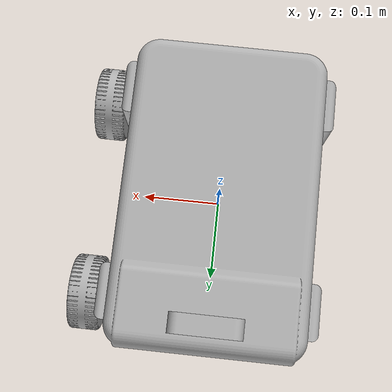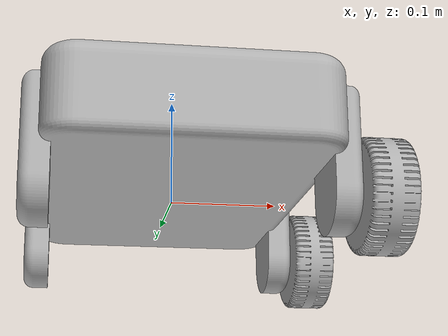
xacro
<?xml version="1.0" ?>
<robot name="alpha" xmlns:xacro="http://www.ros.org/wiki/xacro">

<xacro:include filename="$(find alpha_description)/urdf/materials.xacro" />
<xacro:include filename="$(find alpha_description)/urdf/alpha.trans" />
<xacro:include filename="$(find alpha_description)/urdf/alpha.gazebo" />
<link name="base_link">
  <inertial>
    <origin xyz="-1.0547369564692681e-07 0.004021237681352332 0.0412312225257285" rpy="0 0 0"/>
    <mass value="8.373395552650207"/>
    <inertia ixx="0.115141" iyy="0.045372" izz="0.151049" ixy="0.0" iyz="-0.001432" ixz="-0.0"/>
  </inertial>
  <visual>
    <origin xyz="0 0 0" rpy="0 0 0"/>
    <geometry>
      <mesh filename="package://alpha_description/meshes/base_link.stl" scale="0.001 0.001 0.001"/>
    </geometry>
    <material name="silver"/>
  </visual>
  <collision>
    <origin xyz="0 0 0" rpy="0 0 0"/>
    <geometry>
      <mesh filename="package://alpha_description/meshes/base_link.stl" scale="0.001 0.001 0.001"/>
    </geometry>
  </collision>
</link>

<link name="wheel_clamp_1_1">
  <inertial>
    <origin xyz="0.012113735177594578 8.326672684688674e-17 -0.05658547062161276" rpy="0 0 0"/>
    <mass value="0.20106912783751324"/>
    <inertia ixx="0.000287" iyy="0.000223" izz="8.4e-05" ixy="0.0" iyz="0.0" ixz="0.0"/>
  </inertial>
  <visual>
    <origin xyz="-0.115 0.134 -0.06" rpy="0 0 0"/>
    <geometry>
      <mesh filename="package://alpha_description/meshes/wheel_clamp_1_1.stl" scale="0.001 0.001 0.001"/>
    </geometry>
    <material name="silver"/>
  </visual>
  <collision>
    <origin xyz="-0.115 0.134 -0.06" rpy="0 0 0"/>
    <geometry>
      <mesh filename="package://alpha_description/meshes/wheel_clamp_1_1.stl" scale="0.001 0.001 0.001"/>
    </geometry>
  </collision>
</link>

<link name="wheel_1_1">
  <inertial>
    <origin xyz="-0.06940433730274503 0.13399998634297935 2.287040556936404e-09" rpy="0 0 0"/>
    <mass value="0.2827149727810706"/>
    <inertia ixx="0.000365" iyy="0.000217" izz="0.000217" ixy="0.0" iyz="0.0" ixz="-0.0"/>
  </inertial>
  <visual>
    <origin xyz="-0.23 0.268 0.025" rpy="0 0 0"/>
    <geometry>
      <mesh filename="package://alpha_description/meshes/wheel_1_1.stl" scale="0.001 0.001 0.001"/>
    </geometry>
    <material name="silver"/>
  </visual>
  <collision>
    <origin xyz="-0.23 0.268 0.025" rpy="0 0 0"/>
    <geometry>
      <mesh filename="package://alpha_description/meshes/wheel_1_1.stl" scale="0.001 0.001 0.001"/>
    </geometry>
  </collision>
</link>

<link name="wheel_clamp_2_1">
  <inertial>
    <origin xyz="0.012113735177594606 -8.326672684688674e-17 -0.05658547062161277" rpy="0 0 0"/>
    <mass value="0.20106912783751324"/>
    <inertia ixx="0.000287" iyy="0.000223" izz="8.4e-05" ixy="0.0" iyz="0.0" ixz="0.0"/>
  </inertial>
  <visual>
    <origin xyz="-0.115 -0.134 -0.06" rpy="0 0 0"/>
    <geometry>
      <mesh filename="package://alpha_description/meshes/wheel_clamp_2_1.stl" scale="0.001 0.001 0.001"/>
    </geometry>
    <material name="silver"/>
  </visual>
  <collision>
    <origin xyz="-0.115 -0.134 -0.06" rpy="0 0 0"/>
    <geometry>
      <mesh filename="package://alpha_description/meshes/wheel_clamp_2_1.stl" scale="0.001 0.001 0.001"/>
    </geometry>
  </collision>
</link>

<link name="wheel_2_1">
  <inertial>
    <origin xyz="-0.06940433730274503 -0.1340000043103451 -1.3159243795329845e-08" rpy="0 0 0"/>
    <mass value="0.2827149727810706"/>
    <inertia ixx="0.000365" iyy="0.000217" izz="0.000217" ixy="0.0" iyz="-0.0" ixz="0.0"/>
  </inertial>
  <visual>
    <origin xyz="-0.23 -0.268 0.025" rpy="0 0 0"/>
    <geometry>
      <mesh filename="package://alpha_description/meshes/wheel_2_1.stl" scale="0.001 0.001 0.001"/>
    </geometry>
    <material name="silver"/>
  </visual>
  <collision>
    <origin xyz="-0.23 -0.268 0.025" rpy="0 0 0"/>
    <geometry>
      <mesh filename="package://alpha_description/meshes/wheel_2_1.stl" scale="0.001 0.001 0.001"/>
    </geometry>
  </collision>
</link>

<link name="wheel_clamp_3_1">
  <inertial>
    <origin xyz="-0.012113735177594578 8.326672684688674e-17 -0.05658547062161275" rpy="0 0 0"/>
    <mass value="0.20106912783751324"/>
    <inertia ixx="0.000287" iyy="0.000223" izz="8.4e-05" ixy="0.0" iyz="-0.0" ixz="-0.0"/>
  </inertial>
  <visual>
    <origin xyz="0.115 0.134 -0.06" rpy="0 0 0"/>
    <geometry>
      <mesh filename="package://alpha_description/meshes/wheel_clamp_3_1.stl" scale="0.001 0.001 0.001"/>
    </geometry>
    <material name="silver"/>
  </visual>
  <collision>
    <origin xyz="0.115 0.134 -0.06" rpy="0 0 0"/>
    <geometry>
      <mesh filename="package://alpha_description/meshes/wheel_clamp_3_1.stl" scale="0.001 0.001 0.001"/>
    </geometry>
  </collision>
</link>

<link name="wheel_clamp_4_1">
  <inertial>
    <origin xyz="-0.01211373517759455 -8.326672684688674e-17 -0.056585470621612774" rpy="0 0 0"/>
    <mass value="0.20106912783751324"/>
    <inertia ixx="0.000287" iyy="0.000223" izz="8.4e-05" ixy="-0.0" iyz="-0.0" ixz="-0.0"/>
  </inertial>
  <visual>
    <origin xyz="0.115 -0.134 -0.06" rpy="0 0 0"/>
    <geometry>
      <mesh filename="package://alpha_description/meshes/wheel_clamp_4_1.stl" scale="0.001 0.001 0.001"/>
    </geometry>
    <material name="silver"/>
  </visual>
  <collision>
    <origin xyz="0.115 -0.134 -0.06" rpy="0 0 0"/>
    <geometry>
      <mesh filename="package://alpha_description/meshes/wheel_clamp_4_1.stl" scale="0.001 0.001 0.001"/>
    </geometry>
  </collision>
</link>

<link name="wheel_3_1">
  <inertial>
    <origin xyz="-0.16059566269725498 -0.1339999864936054 -3.053203457420439e-09" rpy="0 0 0"/>
    <mass value="0.2827149727810706"/>
    <inertia ixx="0.000365" iyy="0.000217" izz="0.000217" ixy="0.0" iyz="-0.0" ixz="-0.0"/>
  </inertial>
  <visual>
    <origin xyz="-0.0 -0.0 0.025" rpy="0 0 0"/>
    <geometry>
      <mesh filename="package://alpha_description/meshes/wheel_3_1.stl" scale="0.001 0.001 0.001"/>
    </geometry>
    <material name="silver"/>
  </visual>
  <collision>
    <origin xyz="-0.0 -0.0 0.025" rpy="0 0 0"/>
    <geometry>
      <mesh filename="package://alpha_description/meshes/wheel_3_1.stl" scale="0.001 0.001 0.001"/>
    </geometry>
  </collision>
</link>

<link name="wheel_4_1">
  <inertial>
    <origin xyz="-0.16059566269725495 0.1339999864272803 -2.743365253715657e-09" rpy="0 0 0"/>
    <mass value="0.2827149727810706"/>
    <inertia ixx="0.000365" iyy="0.000217" izz="0.000217" ixy="-0.0" iyz="-0.0" ixz="-0.0"/>
  </inertial>
  <visual>
    <origin xyz="-0.0 -0.0 0.025" rpy="0 0 0"/>
    <geometry>
      <mesh filename="package://alpha_description/meshes/wheel_4_1.stl" scale="0.001 0.001 0.001"/>
    </geometry>
    <material name="silver"/>
  </visual>
  <collision>
    <origin xyz="-0.0 -0.0 0.025" rpy="0 0 0"/>
    <geometry>
      <mesh filename="package://alpha_description/meshes/wheel_4_1.stl" scale="0.001 0.001 0.001"/>
    </geometry>
  </collision>
</link>

<link name="depth_camera_1">
  <inertial>
    <origin xyz="1.065498605964156e-13 0.019926811994094296 0.014499999999999943" rpy="0 0 0"/>
    <mass value="0.05573270671530081"/>
    <inertia ixx="6e-06" iyy="3.6e-05" izz="3.7e-05" ixy="-0.0" iyz="-0.0" ixz="0.0"/>
  </inertial>
  <visual>
    <origin xyz="-0.0 -0.144399 -0.09" rpy="0 0 0"/>
    <geometry>
      <mesh filename="package://alpha_description/meshes/depth_camera_1.stl" scale="0.001 0.001 0.001"/>
    </geometry>
    <material name="silver"/>
  </visual>
  <collision>
    <origin xyz="-0.0 -0.144399 -0.09" rpy="0 0 0"/>
    <geometry>
      <mesh filename="package://alpha_description/meshes/depth_camera_1.stl" scale="0.001 0.001 0.001"/>
    </geometry>
  </collision>
</link>

<joint name="base_link_to_wheel_clamp_1" type="fixed">
  <origin xyz="0.115 -0.134 0.06" rpy="0 0 0"/>
  <parent link="base_link"/>
  <child link="wheel_clamp_1_1"/>
</joint>

<joint name="wheel_clamp_1_to_wheel_1" type="continuous">
  <origin xyz="0.115 -0.134 -0.085" rpy="0 0 0"/>
  <parent link="wheel_clamp_1_1"/>
  <child link="wheel_1_1"/>
  <axis xyz="1.0 0.0 0.0"/>
</joint>

<joint name="base_link_to_wheel_clamp_2" type="fixed">
  <origin xyz="0.115 0.134 0.06" rpy="0 0 0"/>
  <parent link="base_link"/>
  <child link="wheel_clamp_2_1"/>
</joint>

<joint name="wheel_clamp_2_to_wheel_2" type="continuous">
  <origin xyz="0.115 0.134 -0.085" rpy="0 0 0"/>
  <parent link="wheel_clamp_2_1"/>
  <child link="wheel_2_1"/>
  <axis xyz="1.0 0.0 0.0"/>
</joint>

<joint name="base_link_to_wheel_clamp_3" type="fixed">
  <origin xyz="-0.115 -0.134 0.06" rpy="0 0 0"/>
  <parent link="base_link"/>
  <child link="wheel_clamp_3_1"/>
</joint>

<joint name="base_link_to_wheel_clamp_4" type="fixed">
  <origin xyz="-0.115 0.134 0.06" rpy="0 0 0"/>
  <parent link="base_link"/>
  <child link="wheel_clamp_4_1"/>
</joint>

<joint name="wheel_clamp_3_to_wheel_3" type="continuous">
  <origin xyz="0.115 0.134 -0.085" rpy="0 0 0"/>
  <parent link="wheel_clamp_3_1"/>
  <child link="wheel_3_1"/>
  <axis xyz="-1.0 0.0 -0.0"/>
</joint>

<joint name="wheel_clamp_4_to_wheel_4" type="continuous">
  <origin xyz="0.115 -0.134 -0.085" rpy="0 0 0"/>
  <parent link="wheel_clamp_4_1"/>
  <child link="wheel_4_1"/>
  <axis xyz="-1.0 0.0 0.0"/>
</joint>

<joint name="base_link_to_depth_camera" type="fixed">
  <origin xyz="0.0 0.144399 0.09" rpy="0 0 0"/>
  <parent link="base_link"/>
  <child link="depth_camera_1"/>
</joint>

</robot>

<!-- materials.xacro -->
<robot name="alpha" xmlns:xacro="http://www.ros.org/wiki/xacro" >

<material name="silver">
  <color rgba="0.700 0.700 0.700 1.000"/>
</material>

</robot>

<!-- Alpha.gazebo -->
<robot name="alpha" xmlns:xacro="http://www.ros.org/wiki/xacro" >

<xacro:property name="body_color" value="Gazebo/Silver" />

<gazebo>
  <plugin name="control" filename="libgazebo_ros_control.so"/>
</gazebo>
<gazebo reference="base_link">
  <material>${body_color}</material>
  <mu1>0.2</mu1>
  <mu2>0.2</mu2>
  <selfCollide>true</selfCollide>
  <gravity>true</gravity>
</gazebo>

<gazebo reference="wheel_clamp_1_1">
  <material>${body_color}</material>
  <mu1>0.2</mu1>
  <mu2>0.2</mu2>
  <selfCollide>true</selfCollide>
</gazebo>

<gazebo reference="wheel_1_1">
  <material>${body_color}</material>
  <mu1>0.2</mu1>
  <mu2>0.2</mu2>
  <selfCollide>true</selfCollide>
</gazebo>

<gazebo reference="wheel_clamp_2_1">
  <material>${body_color}</material>
  <mu1>0.2</mu1>
  <mu2>0.2</mu2>
  <selfCollide>true</selfCollide>
</gazebo>

<gazebo reference="wheel_2_1">
  <material>${body_color}</material>
  <mu1>0.2</mu1>
  <mu2>0.2</mu2>
  <selfCollide>true</selfCollide>
</gazebo>

<gazebo reference="wheel_clamp_3_1">
  <material>${body_color}</material>
  <mu1>0.2</mu1>
  <mu2>0.2</mu2>
  <selfCollide>true</selfCollide>
</gazebo>

<gazebo reference="wheel_clamp_4_1">
  <material>${body_color}</material>
  <mu1>0.2</mu1>
  <mu2>0.2</mu2>
  <selfCollide>true</selfCollide>
</gazebo>

<gazebo reference="wheel_3_1">
  <material>${body_color}</material>
  <mu1>0.2</mu1>
  <mu2>0.2</mu2>
  <selfCollide>true</selfCollide>
</gazebo>

<gazebo reference="wheel_4_1">
  <material>${body_color}</material>
  <mu1>0.2</mu1>
  <mu2>0.2</mu2>
  <selfCollide>true</selfCollide>
</gazebo>

<gazebo reference="depth_camera_1">
  <material>${body_color}</material>
  <mu1>0.2</mu1>
  <mu2>0.2</mu2>
  <selfCollide>true</selfCollide>
</gazebo>

</robot>
